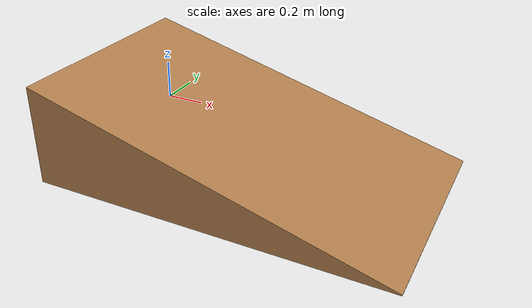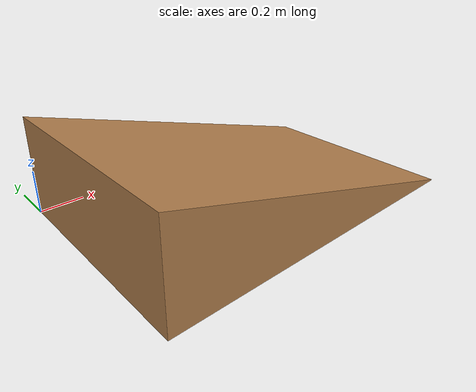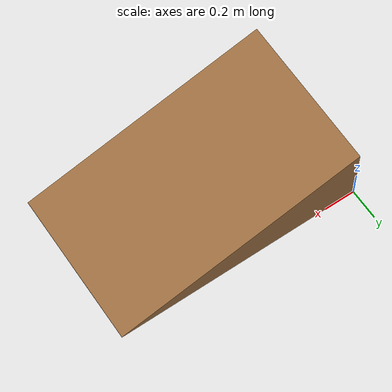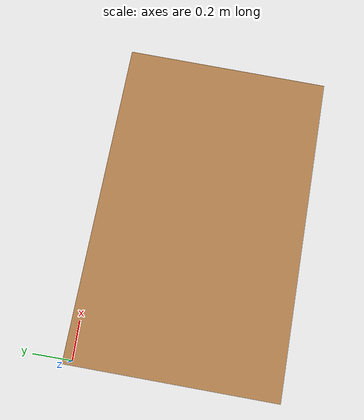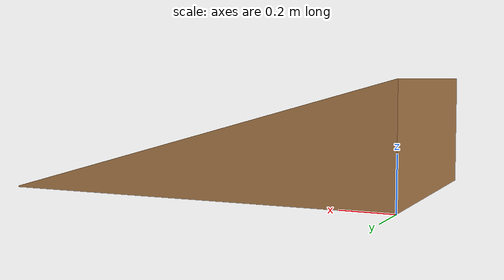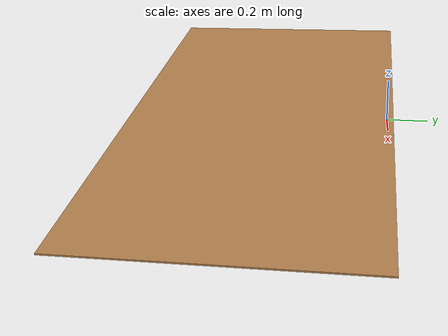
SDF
<?xml version="1.0" ?>
<sdf version="1.6">
  <model name="ramp2">
    <static>true</static>
    <pose frame=''>0. 0. 0. 1.57 0. 0.</pose>
    <link name="link">
      <collision name="collision">
        <geometry>
          <mesh>
            <uri>model://ramp2/meshes/ramp2.stl</uri>
            <scale>0.001 0.001 0.001</scale>
          </mesh>
        </geometry>
      </collision>
      <visual name="visual">
        <geometry>
          <mesh>
            <uri>model://ramp2/meshes/ramp2.stl</uri>
            <scale>0.001 0.001 0.001</scale>
          </mesh>
        </geometry>
       <material>
          <script>
            <name>Gazebo/Wood</name>
            <uri>file://media/materials/scripts/gazebo.material</uri>
          </script>
        </material>
      </visual>
    </link>
  </model>
</sdf>
